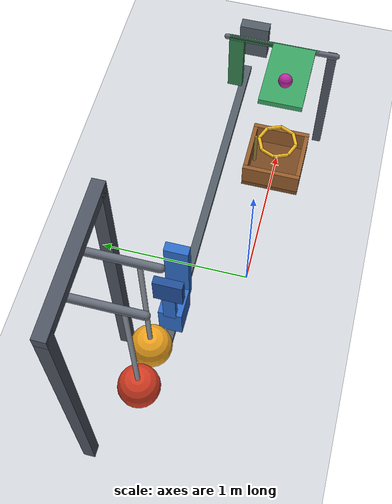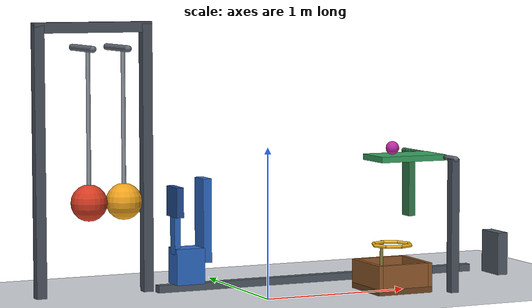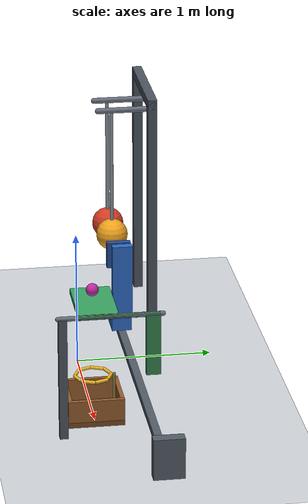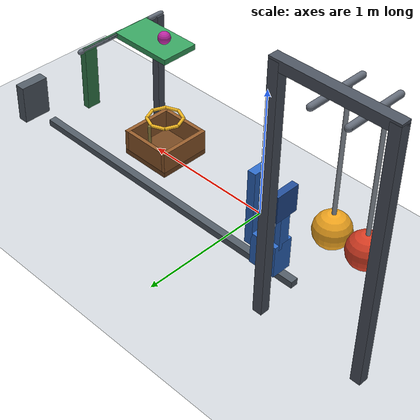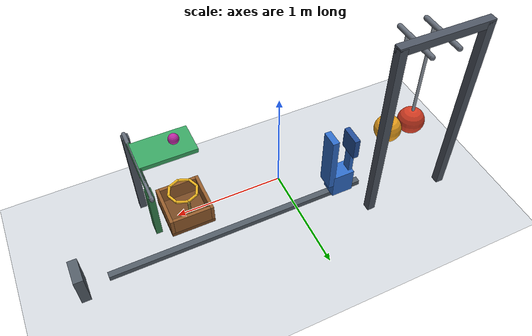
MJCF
<mujoco model="pendulum_cart_flap_drop">
  <compiler angle="radian" autolimits="true"/>
  <option timestep="0.002" gravity="0 0 -9.81" integrator="implicitfast" solver="Newton" iterations="100" tolerance="1e-10"/>
  <size njmax="2000" nconmax="400"/>
  <visual>
    <global azimuth="120" elevation="-18"/>
  </visual>

  <worldbody>
    <light name="key_light" pos="-1 -3 5" dir="0.2 0.4 -1" diffuse="0.85 0.85 0.85"/>
    <light name="fill_light" pos="3 2 4" dir="-0.3 -0.2 -1" diffuse="0.55 0.55 0.55"/>
    <camera name="overview" pos="3 -6 3" xyaxes="0.94 0.34 0 -0.13 0.36 0.92"/>

    <geom name="floor" type="plane" pos="0 0 0" size="5 4 0.1" friction="0.8 0.01 0.001" rgba="0.82 0.84 0.86 1"/>

    <body name="pendulum_frame" pos="0 0 0">
      <geom name="pendulum_frame_left_post" type="box" pos="-1.35 0.65 0.9" size="0.035 0.035 0.9" contype="0" conaffinity="0" rgba="0.3 0.33 0.38 1"/>
      <geom name="pendulum_frame_right_post" type="box" pos="-0.60 0.65 0.9" size="0.035 0.035 0.9" contype="0" conaffinity="0" rgba="0.3 0.33 0.38 1"/>
      <geom name="pendulum_frame_top" type="box" pos="-0.975 0.65 1.78" size="0.41 0.035 0.035" contype="0" conaffinity="0" rgba="0.3 0.33 0.38 1"/>
      <geom name="pendulum_frame_axle1" type="capsule" fromto="-1.1 0.28 1.65 -1.1 0.69 1.65" size="0.022" contype="0" conaffinity="0" rgba="0.4 0.43 0.48 1"/>
      <geom name="pendulum_frame_axle2" type="capsule" fromto="-0.86 0.28 1.65 -0.86 0.69 1.65" size="0.022" contype="0" conaffinity="0" rgba="0.4 0.43 0.48 1"/>
    </body>

    <!-- The bob center is 1 m from the hinge. acos(0.3) raises it exactly 0.7 m. -->
    <body name="pend1" pos="-1.1 0.38 1.65">
      <joint name="pend1_hinge" type="hinge" axis="0 1 0" range="-0.12 1.30" damping="0.01" armature="0.001" solreflimit="0.006 1"/>
      <geom name="pend1_rod" type="capsule" fromto="0 0 0 0 0 -1" size="0.014" mass="0.04" contype="0" conaffinity="0" rgba="0.55 0.58 0.62 1"/>
      <geom name="pend1_bob" type="sphere" pos="0 0 -1" size="0.12" mass="3" friction="0.15 0.002 0.0001" solref="0.004 0.25" solimp="0.95 0.99 0.001" priority="1" rgba="0.85 0.24 0.14 1"/>
    </body>

    <body name="pend2" pos="-0.86 0.38 1.65">
      <joint name="pend2_hinge" type="hinge" axis="0 1 0" range="-1.40 0.04" damping="0.01" armature="0.001" solreflimit="0.006 1"/>
      <geom name="pend2_rod" type="capsule" fromto="0 0 0 0 0 -1" size="0.014" mass="0.04" contype="0" conaffinity="0" rgba="0.55 0.58 0.62 1"/>
      <geom name="pend2_bob" type="sphere" pos="0 0 -1" size="0.12" mass="1.4" friction="0.15 0.002 0.0001" solref="0.004 0.25" solimp="0.95 0.99 0.001" priority="1" rgba="0.95 0.65 0.12 1"/>
    </body>

    <body name="cart_guide" pos="0 0 0">
      <geom name="cart_guide_rail" type="box" pos="0.55 0.38 0.055" size="1.18 0.028 0.025" contype="0" conaffinity="0" rgba="0.32 0.36 0.4 1"/>
      <geom name="cart_guide_end" type="box" pos="1.95 0.38 0.15" size="0.04 0.11 0.15" contype="0" conaffinity="0" rgba="0.32 0.36 0.4 1"/>
    </body>

    <body name="cart" pos="-0.42 0.38 0.2">
      <joint name="cart_slide" type="slide" axis="1 0 0" range="0 2.25" damping="0.025" solreflimit="0.01 1"/>
      <geom name="cart_chassis" type="box" size="0.10 0.075 0.12" mass="0.45" friction="0.2 0.002 0.0001" solref="0.004 0.25" priority="1" rgba="0.18 0.42 0.78 1"/>
      <geom name="cart_impact_pad" type="box" pos="-0.08 0 0.43" size="0.025 0.09 0.10" mass="0.08" friction="0.1 0.002 0.0001" solref="0.004 0.25" solimp="0.95 0.99 0.001" priority="1" rgba="0.13 0.3 0.59 1"/>
      <geom name="cart_impact_stem" type="box" pos="-0.08 0 0.22" size="0.02 0.04 0.14" mass="0.02" contype="0" conaffinity="0" rgba="0.18 0.42 0.78 1"/>
      <geom name="cart_flap_pusher" type="box" pos="0.12 0 0.30" size="0.03 0.075 0.28" mass="0.08" friction="0.03 0.001 0.0001" solref="0.005 0.6" solimp="0.95 0.99 0.001" rgba="0.18 0.42 0.78 1"/>
    </body>

    <body name="flap_support" pos="0 0 0">
      <geom name="flap_support_post" type="box" pos="1.25 -0.25 0.45" size="0.03 0.03 0.45" contype="0" conaffinity="0" rgba="0.3 0.33 0.38 1"/>
      <geom name="flap_support_axle" type="capsule" fromto="1.25 -0.28 0.90 1.25 0.45 0.90" size="0.018" contype="0" conaffinity="0" rgba="0.4 0.43 0.48 1"/>
    </body>

    <!-- Hinge stiction holds the loaded flap horizontal until the cart pushes its side lever. -->
    <body name="flap" pos="1.25 0 0.90">
      <joint name="flap_hinge" type="hinge" axis="0 1 0" range="-1.4835298642 0" frictionloss="0.48" damping="0.004" armature="0.0002" solreflimit="0.004 1" solimpfriction="0.99 0.999 0.001"/>
      <geom name="flap_panel" type="box" pos="-0.24 0 0" size="0.24 0.14 0.02" mass="0.10" friction="0.02 0.001 0.0001" solref="0.006 1" rgba="0.22 0.64 0.38 1"/>
      <geom name="flap_shaft" type="capsule" fromto="0 -0.16 0 0 0.43 0" size="0.018" mass="0.025" contype="0" conaffinity="0" rgba="0.2 0.5 0.3 1"/>
      <geom name="flap_lever" type="box" pos="0 0.38 -0.225" size="0.025 0.05 0.225" mass="0.06" friction="0.03 0.001 0.0001" solref="0.005 0.6" solimp="0.95 0.99 0.001" rgba="0.2 0.5 0.3 1"/>
    </body>

    <body name="ball" pos="0.92 0 0.965">
      <freejoint name="ball_free"/>
      <geom name="ball_geom" type="sphere" size="0.045" mass="0.04" friction="0.65 0.015 0.002" solref="0.006 1" solimp="0.95 0.99 0.001" priority="3" rgba="0.75 0.16 0.65 1"/>
    </body>

    <body name="hoop" pos="0.92 0 0.31">
      <geom name="hoop_rim_1" type="capsule" fromto="0.13 0 0 0.0919239 0.0919239 0" size="0.012" rgba="0.95 0.72 0.12 1"/>
      <geom name="hoop_rim_2" type="capsule" fromto="0.0919239 0.0919239 0 0 0.13 0" size="0.012" rgba="0.95 0.72 0.12 1"/>
      <geom name="hoop_rim_3" type="capsule" fromto="0 0.13 0 -0.0919239 0.0919239 0" size="0.012" rgba="0.95 0.72 0.12 1"/>
      <geom name="hoop_rim_4" type="capsule" fromto="-0.0919239 0.0919239 0 -0.13 0 0" size="0.012" rgba="0.95 0.72 0.12 1"/>
      <geom name="hoop_rim_5" type="capsule" fromto="-0.13 0 0 -0.0919239 -0.0919239 0" size="0.012" rgba="0.95 0.72 0.12 1"/>
      <geom name="hoop_rim_6" type="capsule" fromto="-0.0919239 -0.0919239 0 0 -0.13 0" size="0.012" rgba="0.95 0.72 0.12 1"/>
      <geom name="hoop_rim_7" type="capsule" fromto="0 -0.13 0 0.0919239 -0.0919239 0" size="0.012" rgba="0.95 0.72 0.12 1"/>
      <geom name="hoop_rim_8" type="capsule" fromto="0.0919239 -0.0919239 0 0.13 0 0" size="0.012" rgba="0.95 0.72 0.12 1"/>
      <geom name="hoop_support" type="capsule" fromto="0 0.15 -0.31 0 0.15 0" size="0.012" rgba="0.55 0.48 0.22 1"/>
    </body>

    <body name="box" pos="0.92 0 0">
      <geom name="box_bottom" type="box" pos="0 0 0.02" size="0.20 0.20 0.02" friction="0.8 0.02 0.002" solref="0.006 1" rgba="0.46 0.28 0.13 1"/>
      <geom name="box_left_wall" type="box" pos="-0.185 0 0.12" size="0.015 0.20 0.08" friction="0.8 0.02 0.002" solref="0.006 1" rgba="0.58 0.36 0.17 1"/>
      <geom name="box_right_wall" type="box" pos="0.185 0 0.12" size="0.015 0.20 0.08" friction="0.8 0.02 0.002" solref="0.006 1" rgba="0.58 0.36 0.17 1"/>
      <geom name="box_front_wall" type="box" pos="0 -0.185 0.12" size="0.17 0.015 0.08" friction="0.8 0.02 0.002" solref="0.006 1" rgba="0.58 0.36 0.17 1"/>
      <geom name="box_back_wall" type="box" pos="0 0.185 0.12" size="0.17 0.015 0.08" friction="0.8 0.02 0.002" solref="0.006 1" rgba="0.58 0.36 0.17 1"/>
    </body>
  </worldbody>

  <keyframe>
    <key name="start" time="0" qpos="1.266103672779499 0 0 0 0.92 0 0.965 1 0 0 0" qvel="0 0 0 0 0 0 0 0 0 0"/>
  </keyframe>
</mujoco>
